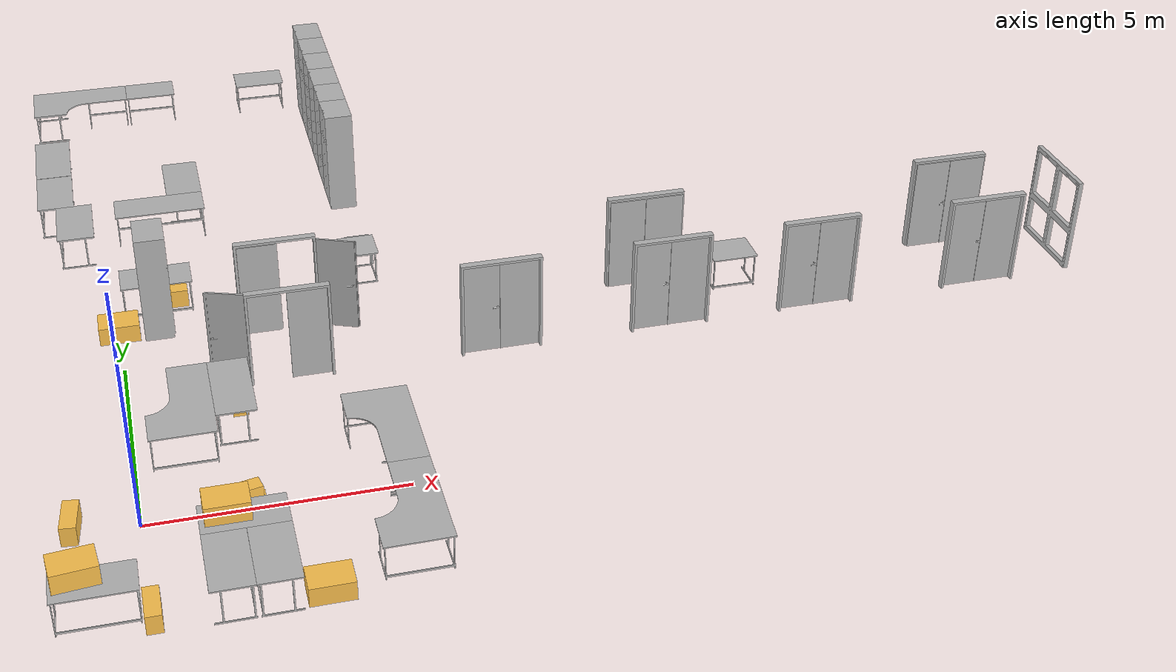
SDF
<sdf version="1.7">
 <world name="default">
  <model name="2_stul_150_SE_1_112">
   <pose>-0.85 -2.15 0 0 -0 3.14</pose>
   <static>1</static>
   <link name="stul_150_collision">
    <collision name="stul_150_collision">
     <geometry><mesh><uri>model://stul_150/meshes/model.dae</uri></mesh></geometry>
    </collision>
    <visual name="stul_150_mesh">
     <cast_shadows>0</cast_shadows>
     <geometry><mesh><uri>model://stul_150/meshes/model.dae</uri></mesh></geometry>
     <material>
      <script>
       <uri>model://stul_150/material/scripts</uri>
       <uri>model://stul_150/material/textures</uri>
       <name>stul_150/Diffuse</name>
      </script>
     </material>
    </visual>
   </link>
  </model>
  <model name="stul_150_SE_1_112_3">
   <pose>1.4 -2.15 0 0 0 -1.57</pose>
   <static>1</static>
   <link name="stul_150_collision">
    <collision name="stul_150_collision">
     <geometry><mesh><uri>model://stul_150/meshes/model.dae</uri></mesh></geometry>
    </collision>
    <visual name="stul_150_mesh">
     <cast_shadows>0</cast_shadows>
     <geometry><mesh><uri>model://stul_150/meshes/model.dae</uri></mesh></geometry>
     <material>
      <script>
       <uri>model://stul_150/material/scripts</uri>
       <uri>model://stul_150/material/textures</uri>
       <name>stul_150/Diffuse</name>
      </script>
     </material>
    </visual>
   </link>
  </model>
  <model name="stul_150_SE_1_112_4">
   <pose>2.2 -2.15 0 0 -0 1.57</pose>
   <static>1</static>
   <link name="stul_150_collision">
    <collision name="stul_150_collision">
     <geometry><mesh><uri>model://stul_150/meshes/model.dae</uri></mesh></geometry>
    </collision>
    <visual name="stul_150_mesh">
     <cast_shadows>0</cast_shadows>
     <geometry><mesh><uri>model://stul_150/meshes/model.dae</uri></mesh></geometry>
     <material>
      <script>
       <uri>model://stul_150/material/scripts</uri>
       <uri>model://stul_150/material/textures</uri>
       <name>stul_150/Diffuse</name>
      </script>
     </material>
    </visual>
   </link>
  </model>
  <model name="stul_180_SE_1_112_1">
   <pose>2 2.9 0 0 -0 1.57</pose>
   <static>1</static>
   <link name="stul_180_collision">
    <collision name="stul_180_collision">
     <geometry><mesh><uri>model://stul_180/meshes/model.dae</uri></mesh></geometry>
    </collision>
    <visual name="stul_180_mesh">
     <cast_shadows>0</cast_shadows>
     <geometry><mesh><uri>model://stul_180/meshes/model.dae</uri></mesh></geometry>
     <material>
      <script>
       <uri>model://stul_180/material/scripts</uri>
       <uri>model://stul_180/material/textures</uri>
       <name>stul_180/Diffuse</name>
      </script>
     </material>
    </visual>
   </link>
  </model>
  <model name="stul_160_SE_1_112_1">
   <pose>1.8 -1 0 0 -0 0</pose>
   <static>1</static>
   <link name="stul_160_collision">
    <collision name="stul_160_collision">
     <geometry><mesh><uri>model://stul_160/meshes/model.dae</uri></mesh></geometry>
    </collision>
    <visual name="stul_160_mesh">
     <cast_shadows>0</cast_shadows>
     <geometry><mesh><uri>model://stul_160/meshes/model.dae</uri></mesh></geometry>
     <material>
      <script>
       <uri>model://stul_160/material/scripts</uri>
       <uri>model://stul_160/material/textures</uri>
       <name>stul_160/Diffuse</name>
      </script>
     </material>
    </visual>
   </link>
  </model>
  <model name="stul_l_pravy_1_112_1">
   <pose>4 -0.2 0 0 0 -1.57</pose>
   <static>1</static>
   <link name="stul_l_pravy_collision">
    <collision name="stul_l_pravy_collision">
     <geometry><mesh><uri>model://stul_l_pravy/meshes/model.dae</uri></mesh></geometry>
    </collision>
    <visual name="stul_l_pravy_mesh">
     <cast_shadows>0</cast_shadows>
     <geometry><mesh><uri>model://stul_l_pravy/meshes/model.dae</uri></mesh></geometry>
     <material>
      <script>
       <uri>model://stul_l_pravy/material/scripts</uri>
       <uri>model://stul_l_pravy/material/textures</uri>
       <name>stul_l_pravy/Diffuse</name>
      </script>
     </material>
    </visual>
   </link>
  </model>
  <model name="stul_l_pravy_1_112_2">
   <pose>0.3 3.8 0 0 0 -1.57</pose>
   <static>1</static>
   <link name="stul_l_pravy_collision">
    <collision name="stul_l_pravy_collision">
     <geometry><mesh><uri>model://stul_l_pravy/meshes/model.dae</uri></mesh></geometry>
    </collision>
    <visual name="stul_l_pravy_mesh">
     <cast_shadows>0</cast_shadows>
     <geometry><mesh><uri>model://stul_l_pravy/meshes/model.dae</uri></mesh></geometry>
     <material>
      <script>
       <uri>model://stul_l_pravy/material/scripts</uri>
       <uri>model://stul_l_pravy/material/textures</uri>
       <name>stul_l_pravy/Diffuse</name>
      </script>
     </material>
    </visual>
   </link>
  </model>
  <model name="stul_l_levy_1_112_1">
   <pose>4.65 0.95 0 0 -0 1.57</pose>
   <static>1</static>
   <link name="stul_l_levy_collision">
    <collision name="stul_l_levy_collision">
     <geometry><mesh><uri>model://stul_l_levy/meshes/model.dae</uri></mesh></geometry>
    </collision>
    <visual name="stul_l_levy_mesh">
     <cast_shadows>0</cast_shadows>
     <geometry><mesh><uri>model://stul_l_levy/meshes/model.dae</uri></mesh></geometry>
     <material>
      <script>
       <uri>model://stul_l_levy/material/scripts</uri>
       <uri>model://stul_l_levy/material/textures</uri>
       <name>stul_l_levy/Diffuse</name>
      </script>
     </material>
    </visual>
   </link>
  </model>
  <model name="futra_112_1">
   <pose>3.305 3.93 0 0 -0 0</pose>
   <static>1</static>
   <link name="futra_160_collision">
    <collision name="futra_160_collision">
     <geometry><mesh><uri>model://futra_160/meshes/model.dae</uri></mesh></geometry>
    </collision>
    <visual name="futra_160">
     <cast_shadows>0</cast_shadows>
     <geometry><mesh><uri>model://futra_160/meshes/model.dae</uri></mesh></geometry>
     <material>
      <script>
       <uri>model://futra_160/material/scripts</uri>
       <uri>model://futra_160/material/textures</uri>
       <name>futra_160/Diffuse</name>
      </script>
     </material>
    </visual>
   </link>
  </model>
  <model name="dvere_sklikou_112_1">
   <pose>2.10865 4.12539 0 0 -0 2.8</pose>
   <static>1</static>
   <link name="dvere_80_sklikou_collision">
    <collision name="dvere_80_sklikou_collision">
     <geometry><mesh><uri>model://dvere_80_sklikou/meshes/model.dae</uri></mesh></geometry>
    </collision>
    <visual name="dvere_80_sklikou">
     <cast_shadows>0</cast_shadows>
     <geometry><mesh><uri>model://dvere_80_sklikou/meshes/model.dae</uri></mesh></geometry>
     <material>
      <script>
       <uri>model://dvere_80_sklikou/material/scripts</uri>
       <uri>model://dvere_80_sklikou/material/textures</uri>
       <name>dvere_80_sklikou/Diffuse</name>
      </script>
     </material>
    </visual>
   </link>
  </model>
  <model name="dvere_bezkliky_112_1">
   <pose>3.72 3.99 0 0 -0 0</pose>
   <static>1</static>
   <link name="dvere_80_bezkliky_collision">
    <collision name="dvere_80_bezkliky_collision">
     <geometry><mesh><uri>model://dvere_80_bezkliky/meshes/model.dae</uri></mesh></geometry>
    </collision>
    <visual name="dvere_80_bezkliky">
     <cast_shadows>0</cast_shadows>
     <geometry><mesh><uri>model://dvere_80_bezkliky/meshes/model.dae</uri></mesh></geometry>
     <material>
      <script>
       <uri>model://dvere_80_bezkliky/material/scripts</uri>
       <uri>model://dvere_80_bezkliky/material/textures</uri>
       <name>dvere_80_bezkliky/Diffuse</name>
      </script>
     </material>
    </visual>
   </link>
  </model>
  <model name="futra_mistnost2">
   <pose>3.305 5.86 0 0 -0 0</pose>
   <static>1</static>
   <link name="futra_160_collision">
    <collision name="futra_160_collision">
     <geometry><mesh><uri>model://futra_160/meshes/model.dae</uri></mesh></geometry>
    </collision>
    <visual name="futra_160">
     <cast_shadows>0</cast_shadows>
     <geometry><mesh><uri>model://futra_160/meshes/model.dae</uri></mesh></geometry>
     <material>
      <script>
       <uri>model://futra_160/material/scripts</uri>
       <uri>model://futra_160/material/textures</uri>
       <name>futra_160/Diffuse</name>
      </script>
     </material>
    </visual>
   </link>
  </model>
  <model name="dvere_sklikou_mistnost2">
   <pose>4.53301 5.62047 0 0 0 -0.396925</pose>
   <static>1</static>
   <link name="dvere_80_sklikou_collision">
    <collision name="dvere_80_sklikou_collision">
     <geometry><mesh><uri>model://dvere_80_sklikou/meshes/model.dae</uri></mesh></geometry>
    </collision>
    <visual name="dvere_80_sklikou">
     <cast_shadows>0</cast_shadows>
     <geometry><mesh><uri>model://dvere_80_sklikou/meshes/model.dae</uri></mesh></geometry>
     <material>
      <script>
       <uri>model://dvere_80_sklikou/material/scripts</uri>
       <uri>model://dvere_80_sklikou/material/textures</uri>
       <name>dvere_80_sklikou/Diffuse</name>
      </script>
     </material>
    </visual>
   </link>
  </model>
  <model name="dvere_bezkliky_mistnost2">
   <pose>2.92 5.78 0 0 -0 3.14</pose>
   <static>1</static>
   <link name="dvere_80_bezkliky_collision">
    <collision name="dvere_80_bezkliky_collision">
     <geometry><mesh><uri>model://dvere_80_bezkliky/meshes/model.dae</uri></mesh></geometry>
    </collision>
    <visual name="dvere_80_bezkliky">
     <cast_shadows>0</cast_shadows>
     <geometry><mesh><uri>model://dvere_80_bezkliky/meshes/model.dae</uri></mesh></geometry>
     <material>
      <script>
       <uri>model://dvere_80_bezkliky/material/scripts</uri>
       <uri>model://dvere_80_bezkliky/material/textures</uri>
       <name>dvere_80_bezkliky/Diffuse</name>
      </script>
     </material>
    </visual>
   </link>
  </model>
  <model name="stul_80_SE_1_102_1">
   <pose>5.25 7.5 0 0 0 -1.57</pose>
   <static>1</static>
   <link name="stul_80_collision">
    <collision name="stul_80_collision">
     <geometry><mesh><uri>model://stul_80/meshes/model.dae</uri></mesh></geometry>
    </collision>
    <visual name="stul_80_mesh">
     <cast_shadows>0</cast_shadows>
     <geometry><mesh><uri>model://stul_80/meshes/model.dae</uri></mesh></geometry>
     <material>
      <script>
       <uri>model://stul_80/material/scripts</uri>
       <uri>model://stul_80/material/textures</uri>
       <name>stul_80/Diffuse</name>
      </script>
     </material>
    </visual>
   </link>
  </model>
  <model name="stul_120_mistnost2_1">
   <pose>1.35181 16.4961 0 0 -0 0</pose>
   <static>1</static>
   <link name="stul_120_collision">
    <collision name="stul_120_collision">
     <geometry><mesh><uri>model://stul_120/meshes/model.dae</uri></mesh></geometry>
    </collision>
    <visual name="stul_120_mesh">
     <cast_shadows>0</cast_shadows>
     <geometry><mesh><uri>model://stul_120/meshes/model.dae</uri></mesh></geometry>
     <material>
      <script>
       <uri>model://stul_120/material/scripts</uri>
       <uri>model://stul_120/material/textures</uri>
       <name>stul_120/Diffuse</name>
      </script>
     </material>
    </visual>
   </link>
  </model>
  <model name="stul_120_mistnost2_2">
   <pose>4.15 16.5 0 0 -0 0</pose>
   <static>1</static>
   <link name="stul_120_collision">
    <collision name="stul_120_collision">
     <geometry><mesh><uri>model://stul_120/meshes/model.dae</uri></mesh></geometry>
    </collision>
    <visual name="stul_120_mesh">
     <cast_shadows>0</cast_shadows>
     <geometry><mesh><uri>model://stul_120/meshes/model.dae</uri></mesh></geometry>
     <material>
      <script>
       <uri>model://stul_120/material/scripts</uri>
       <uri>model://stul_120/material/textures</uri>
       <name>stul_120/Diffuse</name>
      </script>
     </material>
    </visual>
   </link>
  </model>
  <model name="stul_l_levy_mistnost2">
   <pose>-0.4 16.25 0 0 -0 3.14</pose>
   <static>1</static>
   <link name="stul_l_levy_collision">
    <collision name="stul_l_levy_collision">
     <geometry><mesh><uri>model://stul_l_levy/meshes/model.dae</uri></mesh></geometry>
    </collision>
    <visual name="stul_l_levy_mesh">
     <cast_shadows>0</cast_shadows>
     <geometry><mesh><uri>model://stul_l_levy/meshes/model.dae</uri></mesh></geometry>
     <material>
      <script>
       <uri>model://stul_l_levy/material/scripts</uri>
       <uri>model://stul_l_levy/material/textures</uri>
       <name>stul_l_levy/Diffuse</name>
      </script>
     </material>
    </visual>
   </link>
  </model>
  <model name="stul_180_mistnost2_1">
   <pose>-1.15 13.2 0 0 -0 1.57</pose>
   <static>1</static>
   <link name="stul_180_collision">
    <collision name="stul_180_collision">
     <geometry><mesh><uri>model://stul_180/meshes/model.dae</uri></mesh></geometry>
    </collision>
    <visual name="stul_180_mesh">
     <cast_shadows>0</cast_shadows>
     <geometry><mesh><uri>model://stul_180/meshes/model.dae</uri></mesh></geometry>
     <material>
      <script>
       <uri>model://stul_180/material/scripts</uri>
       <uri>model://stul_180/material/textures</uri>
       <name>stul_180/Diffuse</name>
      </script>
     </material>
    </visual>
   </link>
  </model>
  <model name="stul_150_mistnost2_2">
   <pose>-1.14461 11.5378 0 0 -0 1.57</pose>
   <static>1</static>
   <link name="stul_150_collision">
    <collision name="stul_150_collision">
     <geometry><mesh><uri>model://stul_150/meshes/model.dae</uri></mesh></geometry>
    </collision>
    <visual name="stul_150_mesh">
     <cast_shadows>0</cast_shadows>
     <geometry><mesh><uri>model://stul_150/meshes/model.dae</uri></mesh></geometry>
     <material>
      <script>
       <uri>model://stul_150/material/scripts</uri>
       <uri>model://stul_150/material/textures</uri>
       <name>stul_150/Diffuse</name>
      </script>
     </material>
    </visual>
   </link>
  </model>
  <model name="stul_150_mistnost2_3">
   <pose>-0.75 10.05 0 0 -0 1.57</pose>
   <static>1</static>
   <link name="stul_150_collision">
    <collision name="stul_150_collision">
     <geometry><mesh><uri>model://stul_150/meshes/model.dae</uri></mesh></geometry>
    </collision>
    <visual name="stul_150_mesh">
     <cast_shadows>0</cast_shadows>
     <geometry><mesh><uri>model://stul_150/meshes/model.dae</uri></mesh></geometry>
     <material>
      <script>
       <uri>model://stul_150/material/scripts</uri>
       <uri>model://stul_150/material/textures</uri>
       <name>stul_150/Diffuse</name>
      </script>
     </material>
    </visual>
   </link>
  </model>
  <model name="stul_150_mistnost2_4">
   <pose>1.75 11.55 0 0 0 -1.57</pose>
   <static>1</static>
   <link name="stul_150_collision">
    <collision name="stul_150_collision">
     <geometry><mesh><uri>model://stul_150/meshes/model.dae</uri></mesh></geometry>
    </collision>
    <visual name="stul_150_mesh">
     <cast_shadows>0</cast_shadows>
     <geometry><mesh><uri>model://stul_150/meshes/model.dae</uri></mesh></geometry>
     <material>
      <script>
       <uri>model://stul_150/material/scripts</uri>
       <uri>model://stul_150/material/textures</uri>
       <name>stul_150/Diffuse</name>
      </script>
     </material>
    </visual>
   </link>
  </model>
  <model name="stul_200_mistnost2_1">
   <pose>1.15 10.4 0 0 -0 0</pose>
   <static>1</static>
   <link name="stul_200_collision">
    <collision name="stul_200_collision">
     <geometry><mesh><uri>model://stul_200/meshes/model.dae</uri></mesh></geometry>
    </collision>
    <visual name="stul_200_mesh">
     <cast_shadows>0</cast_shadows>
     <geometry><mesh><uri>model://stul_200/meshes/model.dae</uri></mesh></geometry>
     <material>
      <script>
       <uri>model://stul_200/material/scripts</uri>
       <uri>model://stul_200/material/textures</uri>
       <name>stul_200/Diffuse</name>
      </script>
     </material>
    </visual>
   </link>
  </model>
  <model name="skrin_90_mistnost2_1">
   <pose>5.4 11 0 0 0 -1.57</pose>
   <static>1</static>
   <link name="skrin_90_collision">
    <collision name="skrin_90_collision">
     <geometry><mesh><uri>model://skrin_90/meshes/model.dae</uri></mesh></geometry>
    </collision>
    <visual name="skrin_90">
     <cast_shadows>0</cast_shadows>
     <geometry><mesh><uri>model://skrin_90/meshes/model.dae</uri></mesh></geometry>
     <material>
      <script>
       <uri>model://skrin_90/material/scripts</uri>
       <uri>model://skrin_90/material/textures</uri>
       <name>skrin_90/Diffuse</name>
      </script>
     </material>
    </visual>
   </link>
  </model>
  <model name="skrin_90_mistnost2_2">
   <pose>5.4 11.9 0 0 0 -1.57</pose>
   <static>1</static>
   <link name="skrin_90_collision">
    <collision name="skrin_90_collision">
     <geometry><mesh><uri>model://skrin_90/meshes/model.dae</uri></mesh></geometry>
    </collision>
    <visual name="skrin_90">
     <cast_shadows>0</cast_shadows>
     <geometry><mesh><uri>model://skrin_90/meshes/model.dae</uri></mesh></geometry>
     <material>
      <script>
       <uri>model://skrin_90/material/scripts</uri>
       <uri>model://skrin_90/material/textures</uri>
       <name>skrin_90/Diffuse</name>
      </script>
     </material>
    </visual>
   </link>
  </model>
  <model name="skrin_90_mistnost2_3">
   <pose>5.4 12.8 0 0 0 -1.57</pose>
   <static>1</static>
   <link name="skrin_90_collision">
    <collision name="skrin_90_collision">
     <geometry><mesh><uri>model://skrin_90/meshes/model.dae</uri></mesh></geometry>
    </collision>
    <visual name="skrin_90">
     <cast_shadows>0</cast_shadows>
     <geometry><mesh><uri>model://skrin_90/meshes/model.dae</uri></mesh></geometry>
     <material>
      <script>
       <uri>model://skrin_90/material/scripts</uri>
       <uri>model://skrin_90/material/textures</uri>
       <name>skrin_90/Diffuse</name>
      </script>
     </material>
    </visual>
   </link>
  </model>
  <model name="skrin_90_mistnost2_4">
   <pose>5.4 13.7 0 0 0 -1.57</pose>
   <static>1</static>
   <link name="skrin_90_collision">
    <collision name="skrin_90_collision">
     <geometry><mesh><uri>model://skrin_90/meshes/model.dae</uri></mesh></geometry>
    </collision>
    <visual name="skrin_90">
     <cast_shadows>0</cast_shadows>
     <geometry><mesh><uri>model://skrin_90/meshes/model.dae</uri></mesh></geometry>
     <material>
      <script>
       <uri>model://skrin_90/material/scripts</uri>
       <uri>model://skrin_90/material/textures</uri>
       <name>skrin_90/Diffuse</name>
      </script>
     </material>
    </visual>
   </link>
  </model>
  <model name="skrin_90_mistnost2_5">
   <pose>5.4 14.6 0 0 0 -1.57</pose>
   <static>1</static>
   <link name="skrin_90_collision">
    <collision name="skrin_90_collision">
     <geometry><mesh><uri>model://skrin_90/meshes/model.dae</uri></mesh></geometry>
    </collision>
    <visual name="skrin_90">
     <cast_shadows>0</cast_shadows>
     <geometry><mesh><uri>model://skrin_90/meshes/model.dae</uri></mesh></geometry>
     <material>
      <script>
       <uri>model://skrin_90/material/scripts</uri>
       <uri>model://skrin_90/material/textures</uri>
       <name>skrin_90/Diffuse</name>
      </script>
     </material>
    </visual>
   </link>
  </model>
  <model name="skrin_90_mistnost2_6">
   <pose>5.4 15.5 0 0 0 -1.57</pose>
   <static>1</static>
   <link name="skrin_90_collision">
    <collision name="skrin_90_collision">
     <geometry><mesh><uri>model://skrin_90/meshes/model.dae</uri></mesh></geometry>
    </collision>
    <visual name="skrin_90">
     <cast_shadows>0</cast_shadows>
     <geometry><mesh><uri>model://skrin_90/meshes/model.dae</uri></mesh></geometry>
     <material>
      <script>
       <uri>model://skrin_90/material/scripts</uri>
       <uri>model://skrin_90/material/textures</uri>
       <name>skrin_90/Diffuse</name>
      </script>
     </material>
    </visual>
   </link>
  </model>
  <model name="skrin_90_mistnost2_7">
   <pose>0.8 6.448 0 0 -0 1.57</pose>
   <static>1</static>
   <link name="skrin_90_collision">
    <collision name="skrin_90_collision">
     <geometry><mesh><uri>model://skrin_90/meshes/model.dae</uri></mesh></geometry>
    </collision>
    <visual name="skrin_90">
     <cast_shadows>0</cast_shadows>
     <geometry><mesh><uri>model://skrin_90/meshes/model.dae</uri></mesh></geometry>
     <material>
      <script>
       <uri>model://skrin_90/material/scripts</uri>
       <uri>model://skrin_90/material/textures</uri>
       <name>skrin_90/Diffuse</name>
      </script>
     </material>
    </visual>
   </link>
  </model>
  <model name="stolecek_maly_mistnost2_1">
   <pose>5.65 7.9 0 0 -0 1.57</pose>
   <static>1</static>
   <link name="stolecek_maly_collision">
    <collision name="stolecek_maly_collision">
     <geometry><mesh><uri>model://stolecek_maly/meshes/model.dae</uri></mesh></geometry>
    </collision>
    <visual name="stolecek_maly_mesh">
     <cast_shadows>0</cast_shadows>
     <geometry><mesh><uri>model://stolecek_maly/meshes/model.dae</uri></mesh></geometry>
     <material>
      <script>
       <uri>model://stolecek_maly/material/scripts</uri>
       <uri>model://stolecek_maly/material/textures</uri>
       <name>stolecek_maly/Diffuse</name>
      </script>
     </material>
    </visual>
   </link>
  </model>
  <model name="vchodove_dvere_chodba_1">
   <pose>20.5778 5.80804 0 0 0 -1.57</pose>
   <static>1</static>
   <link name="dvere_vchodove_1_collision">
    <collision name="dvere_vchodove_1_collision">
     <geometry><mesh><uri>model://dvere_vchodove_1/meshes/model.dae</uri><scale>0.85 1 1</scale></mesh></geometry>
    </collision>
    <visual name="dvere_vchodove_1_mesh">
     <cast_shadows>0</cast_shadows>
     <geometry><mesh><uri>model://dvere_vchodove_1/meshes/model.dae</uri><scale>0.85 1 1</scale></mesh></geometry>
     <material>
      <script>
       <uri>model://dvere_vchodove_1/material/scripts</uri>
       <uri>model://dvere_vchodove_1/material/textures</uri>
       <name>dvere_vchodove_1/Diffuse</name>
      </script>
     </material>
    </visual>
   </link>
  </model>
  <model name="futra_chodba_3">
   <pose>7.65 3.93 0 0 -0 0</pose>
   <static>1</static>
   <link name="futra_160_collision">
    <collision name="futra_160_collision">
     <geometry><mesh><uri>model://futra_160/meshes/model.dae</uri></mesh></geometry>
    </collision>
    <visual name="futra_160">
     <cast_shadows>0</cast_shadows>
     <geometry><mesh><uri>model://futra_160/meshes/model.dae</uri></mesh></geometry>
     <material>
      <script>
       <uri>model://futra_160/material/scripts</uri>
       <uri>model://futra_160/material/textures</uri>
       <name>futra_160/Diffuse</name>
      </script>
     </material>
    </visual>
   </link>
  </model>
  <model name="dvere_sklikou_chodba_3">
   <pose>7.25 3.99 0 0 -0 0</pose>
   <static>1</static>
   <link name="dvere_80_sklikou_collision">
    <collision name="dvere_80_sklikou_collision">
     <geometry><mesh><uri>model://dvere_80_sklikou/meshes/model.dae</uri></mesh></geometry>
    </collision>
    <visual name="dvere_80_sklikou">
     <cast_shadows>0</cast_shadows>
     <geometry><mesh><uri>model://dvere_80_sklikou/meshes/model.dae</uri></mesh></geometry>
     <material>
      <script>
       <uri>model://dvere_80_sklikou/material/scripts</uri>
       <uri>model://dvere_80_sklikou/material/textures</uri>
       <name>dvere_80_sklikou/Diffuse</name>
      </script>
     </material>
    </visual>
   </link>
  </model>
  <model name="dvere_bezkliky_chodba_3">
   <pose>8.05 3.99 0 0 -0 0</pose>
   <static>1</static>
   <link name="dvere_80_bezkliky_collision">
    <collision name="dvere_80_bezkliky_collision">
     <geometry><mesh><uri>model://dvere_80_bezkliky/meshes/model.dae</uri></mesh></geometry>
    </collision>
    <visual name="dvere_80_bezkliky">
     <cast_shadows>0</cast_shadows>
     <geometry><mesh><uri>model://dvere_80_bezkliky/meshes/model.dae</uri></mesh></geometry>
     <material>
      <script>
       <uri>model://dvere_80_bezkliky/material/scripts</uri>
       <uri>model://dvere_80_bezkliky/material/textures</uri>
       <name>dvere_80_bezkliky/Diffuse</name>
      </script>
     </material>
    </visual>
   </link>
  </model>
  <model name="futra_chodba_4">
   <pose>11.3 3.93 0 0 -0 0</pose>
   <static>1</static>
   <link name="futra_160_collision">
    <collision name="futra_160_collision">
     <geometry><mesh><uri>model://futra_160/meshes/model.dae</uri></mesh></geometry>
    </collision>
    <visual name="futra_160">
     <cast_shadows>0</cast_shadows>
     <geometry><mesh><uri>model://futra_160/meshes/model.dae</uri></mesh></geometry>
     <material>
      <script>
       <uri>model://futra_160/material/scripts</uri>
       <uri>model://futra_160/material/textures</uri>
       <name>futra_160/Diffuse</name>
      </script>
     </material>
    </visual>
   </link>
  </model>
  <model name="dvere_sklikou_chodba_4">
   <pose>10.9 3.99 0 0 -0 0</pose>
   <static>1</static>
   <link name="dvere_80_sklikou_collision">
    <collision name="dvere_80_sklikou_collision">
     <geometry><mesh><uri>model://dvere_80_sklikou/meshes/model.dae</uri></mesh></geometry>
    </collision>
    <visual name="dvere_80_sklikou">
     <cast_shadows>0</cast_shadows>
     <geometry><mesh><uri>model://dvere_80_sklikou/meshes/model.dae</uri></mesh></geometry>
     <material>
      <script>
       <uri>model://dvere_80_sklikou/material/scripts</uri>
       <uri>model://dvere_80_sklikou/material/textures</uri>
       <name>dvere_80_sklikou/Diffuse</name>
      </script>
     </material>
    </visual>
   </link>
  </model>
  <model name="dvere_bezkliky_chodba_4">
   <pose>11.7 3.99 0 0 -0 0</pose>
   <static>1</static>
   <link name="dvere_80_bezkliky_collision">
    <collision name="dvere_80_bezkliky_collision">
     <geometry><mesh><uri>model://dvere_80_bezkliky/meshes/model.dae</uri></mesh></geometry>
    </collision>
    <visual name="dvere_80_bezkliky">
     <cast_shadows>0</cast_shadows>
     <geometry><mesh><uri>model://dvere_80_bezkliky/meshes/model.dae</uri></mesh></geometry>
     <material>
      <script>
       <uri>model://dvere_80_bezkliky/material/scripts</uri>
       <uri>model://dvere_80_bezkliky/material/textures</uri>
       <name>dvere_80_bezkliky/Diffuse</name>
      </script>
     </material>
    </visual>
   </link>
  </model>
  <model name="futra_chodba_5">
   <pose>14.6 3.93 0 0 -0 0</pose>
   <static>1</static>
   <link name="futra_160_collision">
    <collision name="futra_160_collision">
     <geometry><mesh><uri>model://futra_160/meshes/model.dae</uri></mesh></geometry>
    </collision>
    <visual name="futra_160">
     <cast_shadows>0</cast_shadows>
     <geometry><mesh><uri>model://futra_160/meshes/model.dae</uri></mesh></geometry>
     <material>
      <script>
       <uri>model://futra_160/material/scripts</uri>
       <uri>model://futra_160/material/textures</uri>
       <name>futra_160/Diffuse</name>
      </script>
     </material>
    </visual>
   </link>
  </model>
  <model name="dvere_sklikou_chodba_5">
   <pose>14.2 3.99 0 0 -0 0</pose>
   <static>1</static>
   <link name="dvere_80_sklikou_collision">
    <collision name="dvere_80_sklikou_collision">
     <geometry><mesh><uri>model://dvere_80_sklikou/meshes/model.dae</uri></mesh></geometry>
    </collision>
    <visual name="dvere_80_sklikou">
     <cast_shadows>0</cast_shadows>
     <geometry><mesh><uri>model://dvere_80_sklikou/meshes/model.dae</uri></mesh></geometry>
     <material>
      <script>
       <uri>model://dvere_80_sklikou/material/scripts</uri>
       <uri>model://dvere_80_sklikou/material/textures</uri>
       <name>dvere_80_sklikou/Diffuse</name>
      </script>
     </material>
    </visual>
   </link>
  </model>
  <model name="dvere_bezkliky_chodba_5">
   <pose>15 3.99 0 0 -0 0</pose>
   <static>1</static>
   <link name="dvere_80_bezkliky_collision">
    <collision name="dvere_80_bezkliky_collision">
     <geometry><mesh><uri>model://dvere_80_bezkliky/meshes/model.dae</uri></mesh></geometry>
    </collision>
    <visual name="dvere_80_bezkliky">
     <cast_shadows>0</cast_shadows>
     <geometry><mesh><uri>model://dvere_80_bezkliky/meshes/model.dae</uri></mesh></geometry>
     <material>
      <script>
       <uri>model://dvere_80_bezkliky/material/scripts</uri>
       <uri>model://dvere_80_bezkliky/material/textures</uri>
       <name>dvere_80_bezkliky/Diffuse</name>
      </script>
     </material>
    </visual>
   </link>
  </model>
  <model name="futra_chodba_6">
   <pose>18.4 3.93 0 0 -0 0</pose>
   <static>1</static>
   <link name="futra_160_collision">
    <collision name="futra_160_collision">
     <geometry><mesh><uri>model://futra_160/meshes/model.dae</uri></mesh></geometry>
    </collision>
    <visual name="futra_160">
     <cast_shadows>0</cast_shadows>
     <geometry><mesh><uri>model://futra_160/meshes/model.dae</uri></mesh></geometry>
     <material>
      <script>
       <uri>model://futra_160/material/scripts</uri>
       <uri>model://futra_160/material/textures</uri>
       <name>futra_160/Diffuse</name>
      </script>
     </material>
    </visual>
   </link>
  </model>
  <model name="dvere_sklikou_chodba_6">
   <pose>18 3.99 0 0 -0 0</pose>
   <static>1</static>
   <link name="dvere_80_sklikou_collision">
    <collision name="dvere_80_sklikou_collision">
     <geometry><mesh><uri>model://dvere_80_sklikou/meshes/model.dae</uri></mesh></geometry>
    </collision>
    <visual name="dvere_80_sklikou">
     <cast_shadows>0</cast_shadows>
     <geometry><mesh><uri>model://dvere_80_sklikou/meshes/model.dae</uri></mesh></geometry>
     <material>
      <script>
       <uri>model://dvere_80_sklikou/material/scripts</uri>
       <uri>model://dvere_80_sklikou/material/textures</uri>
       <name>dvere_80_sklikou/Diffuse</name>
      </script>
     </material>
    </visual>
   </link>
  </model>
  <model name="dvere_bezkliky_chodba_6">
   <pose>18.8 3.99 0 0 -0 0</pose>
   <static>1</static>
   <link name="dvere_80_bezkliky_collision">
    <collision name="dvere_80_bezkliky_collision">
     <geometry><mesh><uri>model://dvere_80_bezkliky/meshes/model.dae</uri></mesh></geometry>
    </collision>
    <visual name="dvere_80_bezkliky">
     <cast_shadows>0</cast_shadows>
     <geometry><mesh><uri>model://dvere_80_bezkliky/meshes/model.dae</uri></mesh></geometry>
     <material>
      <script>
       <uri>model://dvere_80_bezkliky/material/scripts</uri>
       <uri>model://dvere_80_bezkliky/material/textures</uri>
       <name>dvere_80_bezkliky/Diffuse</name>
      </script>
     </material>
    </visual>
   </link>
  </model>
  <model name="futra_chodba_7">
   <pose>18.4 5.81 0 0 -0 0</pose>
   <static>1</static>
   <link name="futra_160_collision">
    <collision name="futra_160_collision">
     <geometry><mesh><uri>model://futra_160/meshes/model.dae</uri></mesh></geometry>
    </collision>
    <visual name="futra_160">
     <cast_shadows>0</cast_shadows>
     <geometry><mesh><uri>model://futra_160/meshes/model.dae</uri></mesh></geometry>
     <material>
      <script>
       <uri>model://futra_160/material/scripts</uri>
       <uri>model://futra_160/material/textures</uri>
       <name>futra_160/Diffuse</name>
      </script>
     </material>
    </visual>
   </link>
  </model>
  <model name="dvere_sklikou_chodba_7">
   <pose>18 5.72 0 0 -0 0</pose>
   <static>1</static>
   <link name="dvere_80_sklikou_collision">
    <collision name="dvere_80_sklikou_collision">
     <geometry><mesh><uri>model://dvere_80_sklikou/meshes/model.dae</uri></mesh></geometry>
    </collision>
    <visual name="dvere_80_sklikou">
     <cast_shadows>0</cast_shadows>
     <geometry><mesh><uri>model://dvere_80_sklikou/meshes/model.dae</uri></mesh></geometry>
     <material>
      <script>
       <uri>model://dvere_80_sklikou/material/scripts</uri>
       <uri>model://dvere_80_sklikou/material/textures</uri>
       <name>dvere_80_sklikou/Diffuse</name>
      </script>
     </material>
    </visual>
   </link>
  </model>
  <model name="dvere_bezkliky_chodba_7">
   <pose>18.8 5.72 0 0 -0 0</pose>
   <static>1</static>
   <link name="dvere_80_bezkliky_collision">
    <collision name="dvere_80_bezkliky_collision">
     <geometry><mesh><uri>model://dvere_80_bezkliky/meshes/model.dae</uri></mesh></geometry>
    </collision>
    <visual name="dvere_80_bezkliky">
     <cast_shadows>0</cast_shadows>
     <geometry><mesh><uri>model://dvere_80_bezkliky/meshes/model.dae</uri></mesh></geometry>
     <material>
      <script>
       <uri>model://dvere_80_bezkliky/material/scripts</uri>
       <uri>model://dvere_80_bezkliky/material/textures</uri>
       <name>dvere_80_bezkliky/Diffuse</name>
      </script>
     </material>
    </visual>
   </link>
  </model>
  <model name="futra_chodba_9">
   <pose>11.3 5.81 0 0 -0 0</pose>
   <static>1</static>
   <link name="futra_160_collision">
    <collision name="futra_160_collision">
     <geometry><mesh><uri>model://futra_160/meshes/model.dae</uri></mesh></geometry>
    </collision>
    <visual name="futra_160">
     <cast_shadows>0</cast_shadows>
     <geometry><mesh><uri>model://futra_160/meshes/model.dae</uri></mesh></geometry>
     <material>
      <script>
       <uri>model://futra_160/material/scripts</uri>
       <uri>model://futra_160/material/textures</uri>
       <name>futra_160/Diffuse</name>
      </script>
     </material>
    </visual>
   </link>
  </model>
  <model name="dvere_sklikou_chodba_9">
   <pose>10.9 5.72 0 0 -0 0</pose>
   <static>1</static>
   <link name="dvere_80_sklikou_collision">
    <collision name="dvere_80_sklikou_collision">
     <geometry><mesh><uri>model://dvere_80_sklikou/meshes/model.dae</uri></mesh></geometry>
    </collision>
    <visual name="dvere_80_sklikou">
     <cast_shadows>0</cast_shadows>
     <geometry><mesh><uri>model://dvere_80_sklikou/meshes/model.dae</uri></mesh></geometry>
     <material>
      <script>
       <uri>model://dvere_80_sklikou/material/scripts</uri>
       <uri>model://dvere_80_sklikou/material/textures</uri>
       <name>dvere_80_sklikou/Diffuse</name>
      </script>
     </material>
    </visual>
   </link>
  </model>
  <model name="dvere_bezkliky_chodba_9">
   <pose>11.7 5.72 0 0 -0 0</pose>
   <static>1</static>
   <link name="dvere_80_bezkliky_collision">
    <collision name="dvere_80_bezkliky_collision">
     <geometry><mesh><uri>model://dvere_80_bezkliky/meshes/model.dae</uri></mesh></geometry>
    </collision>
    <visual name="dvere_80_bezkliky">
     <cast_shadows>0</cast_shadows>
     <geometry><mesh><uri>model://dvere_80_bezkliky/meshes/model.dae</uri></mesh></geometry>
     <material>
      <script>
       <uri>model://dvere_80_bezkliky/material/scripts</uri>
       <uri>model://dvere_80_bezkliky/material/textures</uri>
       <name>dvere_80_bezkliky/Diffuse</name>
      </script>
     </material>
    </visual>
   </link>
  </model>
  <model name="stul_150">
   <pose>0.848439 7.31265 0 0 -0 3.14</pose>
   <static>1</static>
   <link name="stul_150_collision">
    <collision name="stul_150_collision">
     <geometry><mesh><uri>model://stul_150/meshes/model.dae</uri></mesh></geometry>
    </collision>
    <visual name="stul_150_mesh">
     <cast_shadows>0</cast_shadows>
     <geometry><mesh><uri>model://stul_150/meshes/model.dae</uri></mesh></geometry>
     <material>
      <script>
       <uri>model://stul_150/material/scripts</uri>
       <uri>model://stul_150/material/textures</uri>
       <name>stul_150/Diffuse</name>
      </script>
     </material>
    </visual>
   </link>
  </model>
  <model name="Box_33x15">
   <link name="Wall">
    <pose>0 0 0.1985 0 -0 0</pose>
    <inertial>
     <mass>5</mass>
     <inertia><ixx>0.2157</ixx><iyy>0.3597</iyy><izz>0.444</izz><ixy>0</ixy><ixz>0</ixz><iyz>0</iyz></inertia>
    </inertial>
    <collision name="Wall_Collision"><geometry><box><size>0.84 0.6 0.397</size></box></geometry></collision>
    <visual name="Wall_Visual">
     <geometry><box><size>0.84 0.6 0.397</size></box></geometry>
     <material>
      <script><uri>file://media/materials/scripts/gazebo.material</uri><name>Gazebo/Grey</name></script>
      <ambient>1 0.764706 0.305882 1</ambient>
     </material>
    </visual>
   </link>
   <static>1</static>
   <pose>1.07016 7.45021 0 0 -0 0</pose>
  </model>
  <model name="stul_100">
   <pose>13.1491 5.37929 0 0 -0 3.14</pose>
   <static>1</static>
   <link name="stul_100_collision">
    <collision name="stul_100_collision">
     <geometry><mesh><uri>model://stul_100/meshes/model.dae</uri></mesh></geometry>
    </collision>
    <visual name="stul_100_mesh">
     <cast_shadows>0</cast_shadows>
     <geometry><mesh><uri>model://stul_100/meshes/model.dae</uri></mesh></geometry>
     <material>
      <script>
       <uri>model://stul_100/material/scripts</uri>
       <uri>model://stul_100/material/textures</uri>
       <name>stul_100/Diffuse</name>
      </script>
     </material>
    </visual>
   </link>
  </model>
  <model name="Box_33x15_0">
   <link name="Wall">
    <pose>0 0 0.1985 0 -0 0</pose>
    <inertial>
     <mass>5</mass>
     <inertia><ixx>0.2157</ixx><iyy>0.3597</iyy><izz>0.444</izz><ixy>0</ixy><ixz>0</ixz><iyz>0</iyz></inertia>
    </inertial>
    <collision name="Wall_Collision"><geometry><box><size>0.84 0.6 0.397</size></box></geometry></collision>
    <visual name="Wall_Visual">
     <geometry><box><size>0.84 0.6 0.397</size></box></geometry>
     <material>
      <script><uri>file://media/materials/scripts/gazebo.material</uri><name>Gazebo/Grey</name></script>
      <ambient>1 0.764706 0.305882 1</ambient>
     </material>
    </visual>
   </link>
   <static>1</static>
   <pose>1.52009 -0.921888 0.76 0 -0 0</pose>
  </model>
  <model name="Box_15x30">
   <link name="Wall">
    <pose>0 0 0.1985 0 -0 0</pose>
    <inertial>
     <mass>5</mass>
     <inertia><ixx>0.3089</ixx><iyy>0.1022</iyy><izz>0.2797</izz><ixy>0</ixy><ixz>0</ixz><iyz>0</iyz></inertia>
    </inertial>
    <collision name="Wall_Collision"><geometry><box><size>0.296 0.764 0.397</size></box></geometry></collision>
    <visual name="Wall_Visual">
     <geometry><box><size>0.296 0.764 0.397</size></box></geometry>
     <material>
      <script><uri>file://media/materials/scripts/gazebo.material</uri><name>Gazebo/Grey</name></script>
      <ambient>1 0.764706 0.305882 1</ambient>
     </material>
    </visual>
   </link>
   <static>1</static>
   <pose>0.062244 -2.46373 0 0 -0 0</pose>
  </model>
  <model name="Box_33x15_1">
   <link name="Wall">
    <pose>0 0 0.1985 0 -0 0</pose>
    <inertial>
     <mass>5</mass>
     <inertia><ixx>0.2157</ixx><iyy>0.3597</iyy><izz>0.444</izz><ixy>0</ixy><ixz>0</ixz><iyz>0</iyz></inertia>
    </inertial>
    <collision name="Wall_Collision"><geometry><box><size>0.84 0.6 0.397</size></box></geometry></collision>
    <visual name="Wall_Visual">
     <geometry><box><size>0.84 0.6 0.397</size></box></geometry>
     <material>
      <script><uri>file://media/materials/scripts/gazebo.material</uri><name>Gazebo/Grey</name></script>
      <ambient>1 0.764706 0.305882 1</ambient>
     </material>
    </visual>
   </link>
   <static>1</static>
   <pose>3.0673 -2.53013 0 0 -0 0</pose>
  </model>
  <model name="Box_15x30_0">
   <link name="Wall">
    <pose>0 0 0.1985 0 -0 0</pose>
    <inertial>
     <mass>5</mass>
     <inertia><ixx>0.3089</ixx><iyy>0.1022</iyy><izz>0.2797</izz><ixy>0</ixy><ixz>0</ixz><iyz>0</iyz></inertia>
    </inertial>
    <collision name="Wall_Collision"><geometry><box><size>0.296 0.764 0.397</size></box></geometry></collision>
    <visual name="Wall_Visual">
     <geometry><box><size>0.296 0.764 0.397</size></box></geometry>
     <material>
      <script><uri>file://media/materials/scripts/gazebo.material</uri><name>Gazebo/Grey</name></script>
      <ambient>1 0.764706 0.305882 1</ambient>
     </material>
    </visual>
   </link>
   <static>1</static>
   <pose>2.13386 3.27949 0 0 -0 0</pose>
  </model>
  <model name="Box_33x15_4">
   <link name="Wall">
    <pose>0 0 0.1985 0 -0 0</pose>
    <inertial>
     <mass>5</mass>
     <inertia><ixx>0.2157</ixx><iyy>0.3597</iyy><izz>0.444</izz><ixy>0</ixy><ixz>0</ixz><iyz>0</iyz></inertia>
    </inertial>
    <collision name="Wall_Collision"><geometry><box><size>0.84 0.6 0.397</size></box></geometry></collision>
    <visual name="Wall_Visual">
     <geometry><box><size>0.84 0.6 0.397</size></box></geometry>
     <material>
      <script><uri>file://media/materials/scripts/gazebo.material</uri><name>Gazebo/Grey</name></script>
      <ambient>1 0.764706 0.305882 1</ambient>
     </material>
    </visual>
   </link>
   <static>1</static>
   <pose>-1.14339 -2.00146 0.76 0 -0 0.10866</pose>
  </model>
  <model name="Box_15x30_2">
   <link name="Wall">
    <pose>0 0 0.1985 0 -0 0</pose>
    <inertial>
     <mass>5</mass>
     <inertia><ixx>0.3089</ixx><iyy>0.1022</iyy><izz>0.2797</izz><ixy>0</ixy><ixz>0</ixz><iyz>0</iyz></inertia>
    </inertial>
    <collision name="Wall_Collision"><geometry><box><size>0.296 0.764 0.397</size></box></geometry></collision>
    <visual name="Wall_Visual">
     <geometry><box><size>0.296 0.764 0.397</size></box></geometry>
     <material>
      <script><uri>file://media/materials/scripts/gazebo.material</uri><name>Gazebo/Grey</name></script>
      <ambient>1 0.764706 0.305882 1</ambient>
     </material>
    </visual>
   </link>
   <static>1</static>
   <pose>-1.1452 -0.782307 0.76 0 0 -0.110423</pose>
  </model>
  <model name="Box_33x15_5">
   <link name="Wall">
    <pose>0 0 0.1985 0 -0 0</pose>
    <inertial>
     <mass>5</mass>
     <inertia><ixx>0.2157</ixx><iyy>0.3597</iyy><izz>0.444</izz><ixy>0</ixy><ixz>0</ixz><iyz>0</iyz></inertia>
    </inertial>
    <collision name="Wall_Collision"><geometry><box><size>0.84 0.6 0.397</size></box></geometry></collision>
    <visual name="Wall_Visual">
     <geometry><box><size>0.84 0.6 0.397</size></box></geometry>
     <material>
      <script><uri>file://media/materials/scripts/gazebo.material</uri><name>Gazebo/Grey</name></script>
      <ambient>1 0.764706 0.305882 1</ambient>
     </material>
    </visual>
   </link>
   <static>1</static>
   <pose>1.85363 -0.263625 0 0 -0 0</pose>
  </model>
  <model name="Box_15x30_3">
   <link name="Wall">
    <pose>0 0 0.1985 0 -0 0</pose>
    <inertial>
     <mass>5</mass>
     <inertia><ixx>0.3089</ixx><iyy>0.1022</iyy><izz>0.2797</izz><ixy>0</ixy><ixz>0</ixz><iyz>0</iyz></inertia>
    </inertial>
    <collision name="Wall_Collision"><geometry><box><size>0.296 0.764 0.397</size></box></geometry></collision>
    <visual name="Wall_Visual">
     <geometry><box><size>0.296 0.764 0.397</size></box></geometry>
     <material>
      <script><uri>file://media/materials/scripts/gazebo.material</uri><name>Gazebo/Grey</name></script>
      <ambient>1 0.764706 0.305882 1</ambient>
     </material>
    </visual>
   </link>
   <static>1</static>
   <pose>1.8213 -0.316102 0.4 0 0 -1.36</pose>
  </model>
  <model name="Box_33x15_6">
   <link name="Wall">
    <pose>0 0 0.1985 0 -0 0</pose>
    <inertial>
     <mass>5</mass>
     <inertia><ixx>0.2157</ixx><iyy>0.3597</iyy><izz>0.444</izz><ixy>0</ixy><ixz>0</ixz><iyz>0</iyz></inertia>
    </inertial>
    <collision name="Wall_Collision"><geometry><box><size>0.84 0.6 0.397</size></box></geometry></collision>
    <visual name="Wall_Visual">
     <geometry><box><size>0.84 0.6 0.397</size></box></geometry>
     <material>
      <script><uri>file://media/materials/scripts/gazebo.material</uri><name>Gazebo/Grey</name></script>
      <ambient>1 0.764706 0.305882 1</ambient>
     </material>
    </visual>
   </link>
   <static>1</static>
   <pose>-0.021909 6.34097 0 0 -0 0</pose>
  </model>
 </world>
</sdf>
